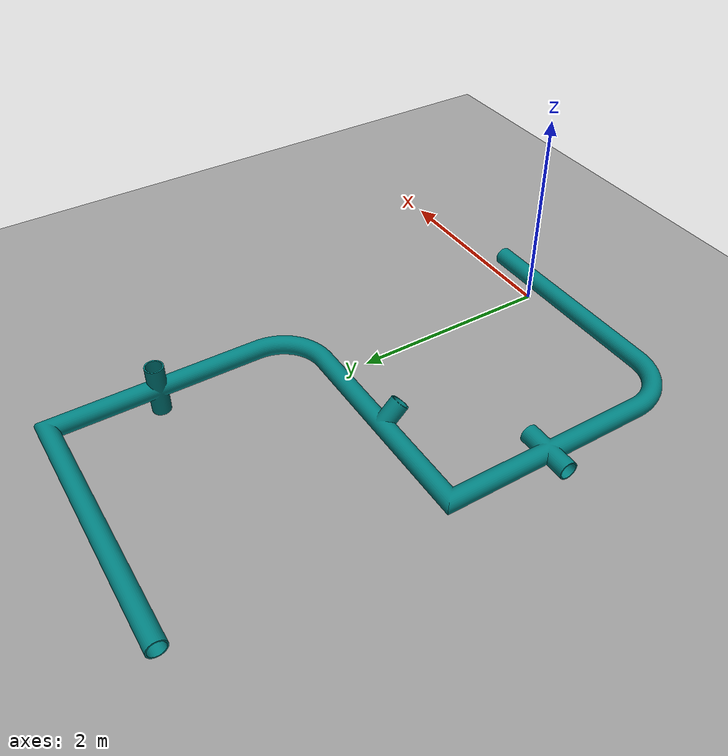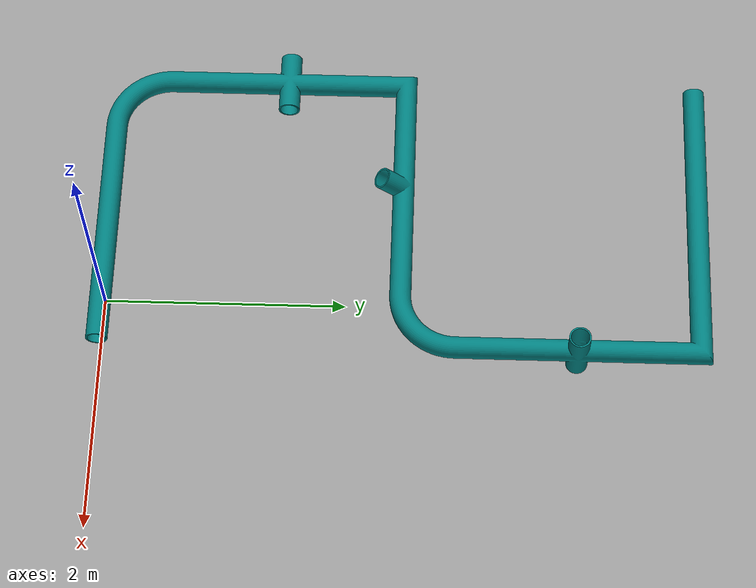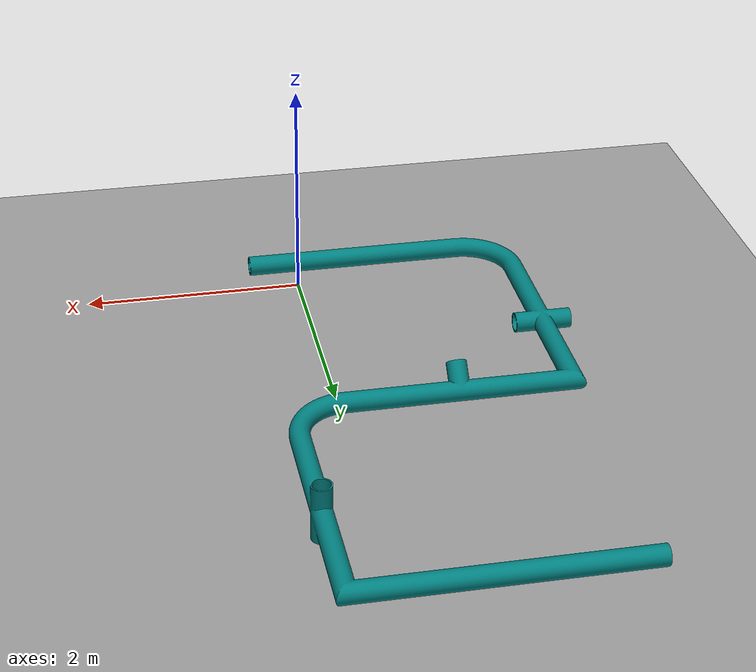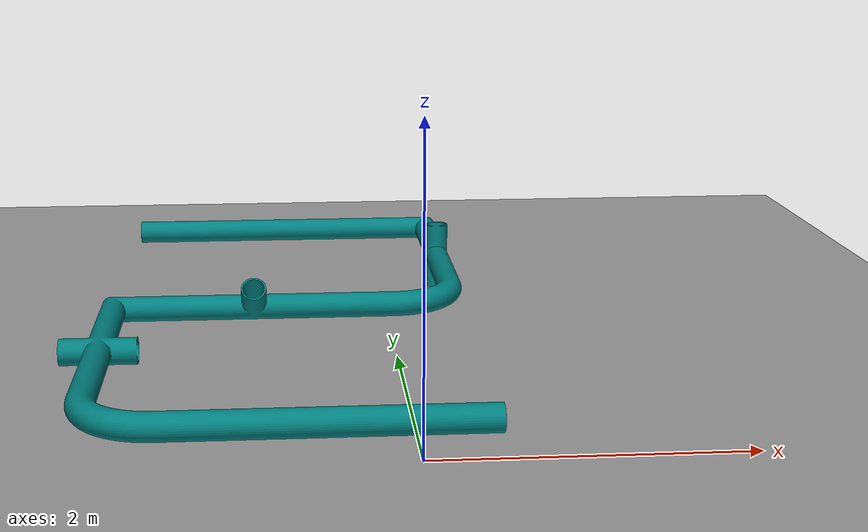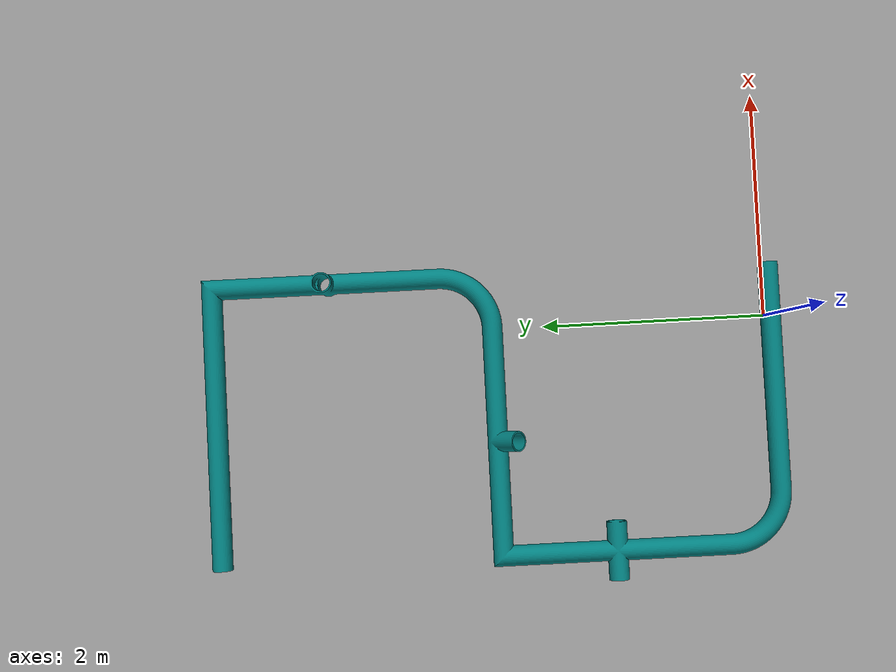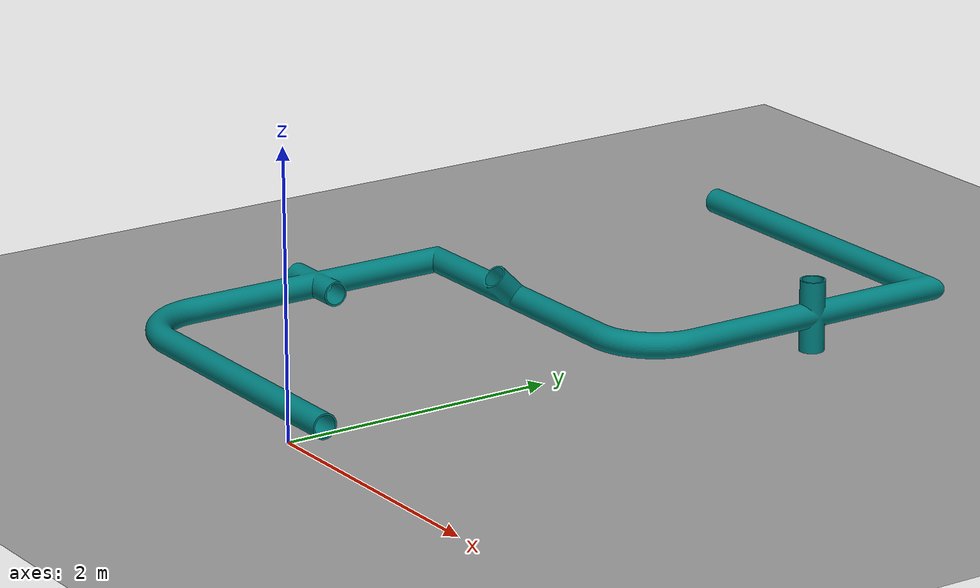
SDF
<sdf version="1.6">
 <world name="90_bend.world">
  <model name="ground_plane">
   <static>1</static>
   <link name="link">
    <collision name="collision">
     <geometry><plane><normal>0 0 1</normal><size>100 100</size></plane></geometry>
     <surface>
      <contact><collide_bitmask>65535</collide_bitmask></contact>
      <friction><ode><mu>100</mu><mu2>50</mu2></ode></friction>
     </surface>
    </collision>
    <visual name="visual">
     <cast_shadows>0</cast_shadows>
     <geometry><plane><normal>0 0 1</normal><size>100 100</size></plane></geometry>
     <material>
      <ambient>1 1 1 1</ambient>
      <diffuse>0.6 0.6 0.6 1</diffuse>
      <specular>0.4 0.4 0.4 1</specular>
      <emissive>0 0 0 0</emissive>
     </material>
    </visual>
   </link>
  </model>
  <light name="sun" type="directional">
   <pose>0 0 10 0 -0 0</pose>
   <diffuse>0.8 0.8 0.8 1</diffuse>
   <specular>0.2 0.2 0.2 1</specular>
   <attenuation>
    <range>1000</range>
    <constant>0.9</constant>
    <linear>0.01</linear>
    <quadratic>0.001</quadratic>
   </attenuation>
   <direction>-0.5 0.1 -0.9</direction>
  </light>
  <model name="pipe">
   <pose>-0.747559 -0.092285 0 0 0 1.57079633</pose>
   <static>1</static>
   <link name="body">
    <collision name="collision">
     <geometry>
      <mesh>
       <uri>file:///home/alex/Research/catkin_ws/src/pipe_inspect_robot_gazebo/models/control_demo.dae</uri>
      </mesh>
     </geometry>
     <surface><friction><ode><mu>1</mu></ode></friction></surface>
    </collision>
    <visual name="visual">
     <geometry>
      <mesh>
       <uri>file:///home/alex/Research/catkin_ws/src/pipe_inspect_robot_gazebo/models/control_demo.dae</uri>
      </mesh>
     </geometry>
     <material>
      <ambient>0.0 0.5 0.5 1</ambient>
      <diffuse>0.0 0.5 0.5 1</diffuse>
      <specular>0.1 0.1 0.1 1</specular>
      <emissive>0 0 0 0</emissive>
     </material>
    </visual>
   </link>
  </model>
  <gravity>0 0 -9.8</gravity>
  <magnetic_field>6e-06 2.3e-05 -4.2e-05</magnetic_field>
  <atmosphere type="adiabatic"/>
  <physics name="default_physics" default="0" type="ode">
   <max_step_size>0.001</max_step_size>
   <real_time_factor>1</real_time_factor>
   <real_time_update_rate>1000</real_time_update_rate>
  </physics>
  <scene>
   <sky><clouds><speed>5</speed></clouds></sky>
   <ambient>0.4 0.4 0.4 1</ambient>
   <background>0.7 0.7 0.7 1</background>
   <shadows>1</shadows>
  </scene>
  <audio><device>default</device></audio>
  <spherical_coordinates>
   <surface_model>EARTH_WGS84</surface_model>
   <latitude_deg>0</latitude_deg>
   <longitude_deg>0</longitude_deg>
   <elevation>0</elevation>
   <heading_deg>0</heading_deg>
  </spherical_coordinates>
 </world>
</sdf>
